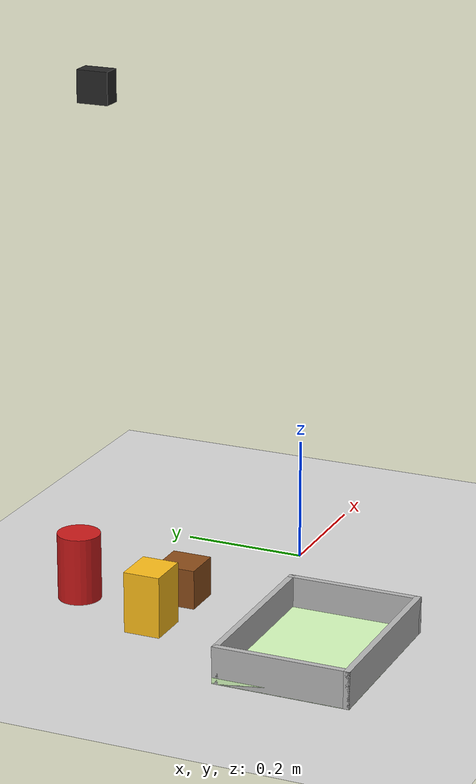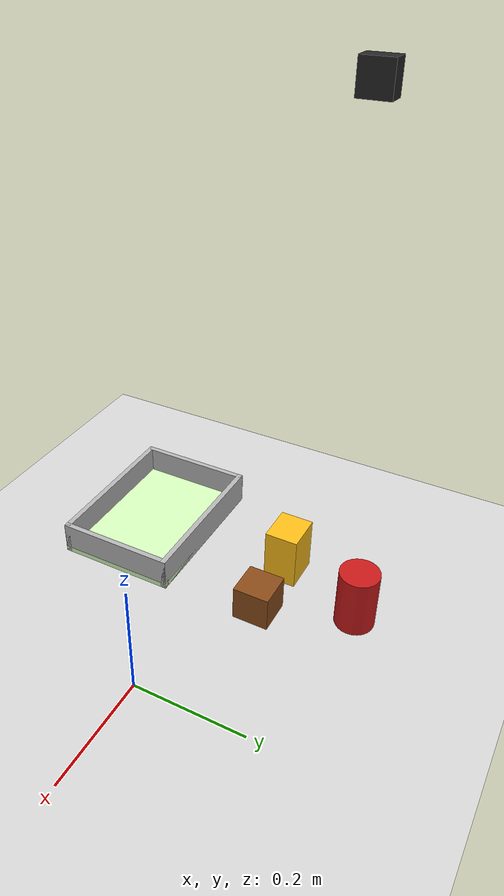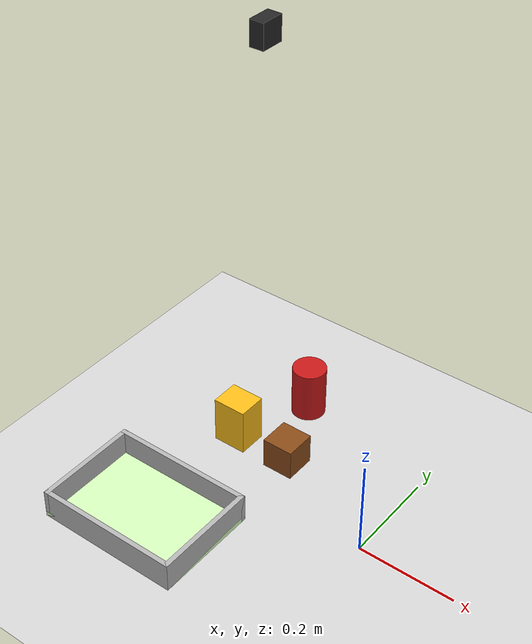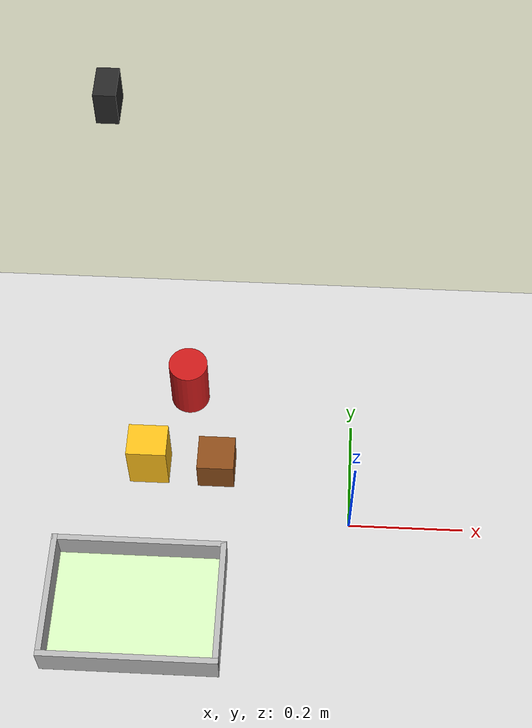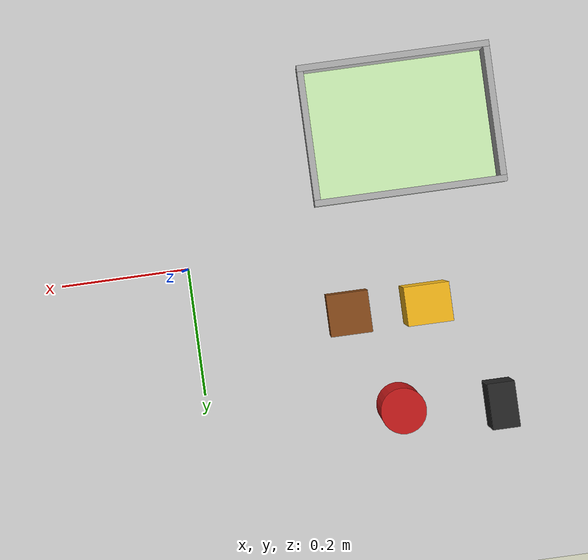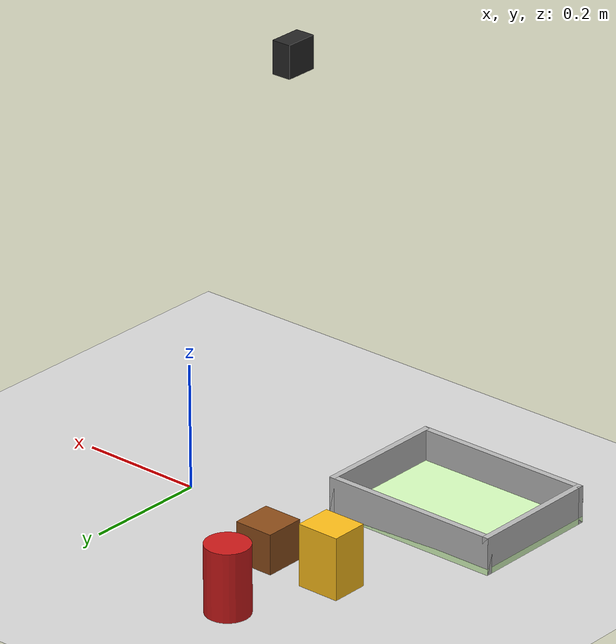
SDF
<?xml version="1.0" ?>
<sdf version="1.8">
  <world name="default">

    <!-- World plugins             -->

    <plugin
      filename="ignition-gazebo-physics-system"
      name="ignition::gazebo::systems::Physics">
    </plugin>

    <plugin
      filename="ignition-gazebo-scene-broadcaster-system"
      name="ignition::gazebo::systems::SceneBroadcaster">
    </plugin>

    <plugin
      filename="ignition-gazebo-user-commands-system"
      name="ignition::gazebo::systems::UserCommands">
    </plugin>

    <plugin
      filename="libignition-gazebo-sensors-system.so"
      name="ignition::gazebo::systems::Sensors">
      <render_engine>ogre</render_engine>
    </plugin>

    <gravity>0 0 -9.8</gravity>

    <!-- 物理参数（WSL2 弱 CPU 调优）-->
    <!-- 默认 Gazebo 用 1ms (1000 Hz) sim step + 自动追赶 wall time, WSL2 -->
    <!-- 集显 + 软件渲染下 CPU 跟不上, 会出现 sim_time 抖动/回退,         -->
    <!-- 触发下游 tf2 buffer 反复 "Detected jump back in time" + RViz     -->
    <!-- 重置, 表现为机械臂在 RViz 中一闪一闪。                          -->
    <!-- max_step_size=0.005 → 200 Hz sim step (默认 1000 Hz 的 1/5),     -->
    <!-- real_time_update_rate=200 → Gazebo 不会硬追赶 wall time,         -->
    <!-- 跑不动时 sim_time 自然变慢, 但保持单调递增, tf 就不再回跳。     -->
    <physics name="wsl_friendly" default="true" type="ode">
      <max_step_size>0.005</max_step_size>
      <real_time_factor>1.0</real_time_factor>
      <real_time_update_rate>200</real_time_update_rate>
    </physics>

    <!-- 光源                      -->

    <light name="sun" type="directional">
      <pose>0 0 10 0 0 0</pose>
      <diffuse>0.8 0.8 0.8 1</diffuse>
      <specular>0.2 0.2 0.2 1</specular>
      <direction>-0.5 0.1 -1</direction>
      <cast_shadows>true</cast_shadows>
    </light>

    <!-- 地面                      -->

    <model name="ground_plane">
      <static>true</static>
      <link name="link">
        <collision name="collision">
          <geometry>
            <plane>
              <normal>0 0 1</normal>
              <size>20 20</size>
            </plane>
          </geometry>
        </collision>
        <visual name="visual">
          <geometry>
            <plane>
              <normal>0 0 1</normal>
              <size>20 20</size>
            </plane>
          </geometry>
          <material>
            <ambient>0.85 0.85 0.85 1</ambient>
            <diffuse>0.85 0.85 0.85 1</diffuse>
          </material>
        </visual>
      </link>
    </model>

    <!-- Alicia-D 纯版（含原始夹爪）-->
    <!-- 通过 ros_gz_sim 的 create 节点从 /robot_description 动态加载 -->
    <!-- 不再在此 SDF 中静态 include，防止模型冲突与物理爆炸 -->

    <!-- 取料区（机器人前方左侧）  -->
    <!-- 无仓体，物体直接放在地面，降低真实物理抓取碰撞难度 -->

    <!-- Bin B: 放料仓（机器人前方右侧）-->

    <model name="bin_b_floor">
      <static>true</static>
      <pose>-0.36 -0.18 0.005 0 0 0</pose>
      <link name="link">
        <collision name="collision">
          <geometry><box><size>0.30 0.22 0.01</size></box></geometry>
        </collision>
        <visual name="visual">
          <geometry><box><size>0.30 0.22 0.01</size></box></geometry>
          <material>
            <ambient>0.85 1.0 0.75 1</ambient>
            <diffuse>0.85 1.0 0.75 1</diffuse>
          </material>
        </visual>
      </link>
    </model>

    <model name="bin_b_wall_front">
      <static>true</static>
      <pose>-0.36 -0.075 0.03 0 0 0</pose>
      <link name="link">
        <collision name="collision"><geometry><box><size>0.30 0.01 0.06</size></box></geometry></collision>
        <visual name="visual"><geometry><box><size>0.30 0.01 0.06</size></box></geometry></visual>
      </link>
    </model>

    <model name="bin_b_wall_back">
      <static>true</static>
      <pose>-0.36 -0.285 0.03 0 0 0</pose>
      <link name="link">
        <collision name="collision"><geometry><box><size>0.30 0.01 0.06</size></box></geometry></collision>
        <visual name="visual"><geometry><box><size>0.30 0.01 0.06</size></box></geometry></visual>
      </link>
    </model>

    <model name="bin_b_wall_left">
      <static>true</static>
      <pose>-0.215 -0.18 0.03 0 0 0</pose>
      <link name="link">
        <collision name="collision"><geometry><box><size>0.01 0.22 0.06</size></box></geometry></collision>
        <visual name="visual"><geometry><box><size>0.01 0.22 0.06</size></box></geometry></visual>
      </link>
    </model>

    <model name="bin_b_wall_right">
      <static>true</static>
      <pose>-0.505 -0.18 0.03 0 0 0</pose>
      <link name="link">
        <collision name="collision"><geometry><box><size>0.01 0.22 0.06</size></box></geometry></collision>
        <visual name="visual"><geometry><box><size>0.01 0.22 0.06</size></box></geometry></visual>
      </link>
    </model>

    <!-- 取料区内 3 个测试物体      -->
    <!-- 全部动态 (FR-1.3)          -->

    <!-- 黄色长方体 (yellow_box) -->
    <!-- 摆放间距: 与 red_cylinder y 间距 ≥0.085m, 与 brown_cube x 间距 ≥0.0375m, -->
    <!-- 同时保持距离基座 ≤0.40m, 不超出机械臂可达范围。 -->
    <model name="test_box">
      <static>false</static>
      <pose>-0.36 0.10 0.05 1.5708 0 1.5708</pose>
      <link name="link">
        <inertial>
          <mass>0.15</mass>
          <inertia>
            <ixx>0.000113</ixx><ixy>0</ixy><ixz>0</ixz>
            <iyy>0.000238</iyy><iyz>0</iyz>
            <izz>0.000238</izz>
          </inertia>
        </inertial>
        <collision name="collision">
          <geometry><box><size>0.06 0.10 0.07</size></box></geometry>
          <surface>
            <friction>
              <ode>
                <mu>8.0</mu>
                <mu2>8.0</mu2>
                <slip1>0.0</slip1>
                <slip2>0.0</slip2>
              </ode>
            </friction>
            <contact>
              <ode>
                <kp>200000</kp>
                <kd>40</kd>
                <max_vel>0.01</max_vel>
                <min_depth>0.001</min_depth>
              </ode>
            </contact>
          </surface>
        </collision>
        <visual name="visual">
          <geometry><box><size>0.06 0.10 0.07</size></box></geometry>
          <material>
            <ambient>1.0 0.75 0.1 1</ambient>
            <diffuse>1.0 0.75 0.1 1</diffuse>
          </material>
        </visual>
      </link>
    </model>

    <!-- 红色圆柱 (red_cylinder) -->
    <model name="test_can">
      <static>false</static>
      <pose>-0.30 0.255 0.055 0 0 0</pose>
      <link name="link">
        <inertial>
          <mass>0.10</mass>
          <inertia>
            <ixx>0.000110</ixx><ixy>0</ixy><ixz>0</ixz>
            <iyy>0.000110</iyy><iyz>0</iyz>
            <izz>0.0000613</izz>
          </inertia>
        </inertial>
        <collision name="collision">
          <geometry>
            <cylinder>
              <radius>0.035</radius>
              <length>0.11</length>
            </cylinder>
          </geometry>
          <surface>
            <friction>
              <ode>
                <mu>8.0</mu>
                <mu2>8.0</mu2>
                <slip1>0.0</slip1>
                <slip2>0.0</slip2>
              </ode>
            </friction>
            <contact>
              <ode>
                <kp>200000</kp>
                <kd>40</kd>
                <max_vel>0.01</max_vel>
                <min_depth>0.001</min_depth>
              </ode>
            </contact>
          </surface>
        </collision>
        <visual name="visual">
          <geometry>
            <cylinder>
              <radius>0.035</radius>
              <length>0.11</length>
            </cylinder>
          </geometry>
          <material>
            <ambient>0.8 0.1 0.1 1</ambient>
            <diffuse>0.8 0.1 0.1 1</diffuse>
          </material>
        </visual>
      </link>
    </model>

    <!-- 棕色正方体 (brown_cube) -->
    <model name="test_brown_cube">
      <static>false</static>
      <pose>-0.24 0.10 0.0325 0 0 0</pose>
      <link name="link">
        <inertial>
          <mass>0.08</mass>
          <inertia>
            <ixx>0.0000563</ixx><ixy>0</ixy><ixz>0</ixz>
            <iyy>0.0000563</iyy><iyz>0</iyz>
            <izz>0.0000563</izz>
          </inertia>
        </inertial>
        <collision name="collision">
          <geometry><box><size>0.065 0.065 0.065</size></box></geometry>
          <surface>
            <friction>
              <ode>
                <mu>8.0</mu>
                <mu2>8.0</mu2>
                <slip1>0.0</slip1>
                <slip2>0.0</slip2>
              </ode>
            </friction>
            <contact>
              <ode>
                <kp>200000</kp>
                <kd>40</kd>
                <max_vel>0.01</max_vel>
                <min_depth>0.001</min_depth>
              </ode>
            </contact>
          </surface>
        </collision>
        <visual name="visual">
          <geometry><box><size>0.065 0.065 0.065</size></box></geometry>
          <material>
            <ambient>0.55 0.30 0.10 1</ambient>
            <diffuse>0.55 0.30 0.10 1</diffuse>
          </material>
        </visual>
      </link>
    </model>

    <!-- 俯视 RGB-D 相机（静态）   -->
    <!-- 位置: 取料区正上方         -->

    <model name="overhead_rgbd_camera">
      <static>true</static>
      <!-- pose: x=取料区中心, y=取料区中心, z=0.85m 高, 俯视朝下 (pitch=90°) -->
      <pose>-0.36 0.18 0.85 0 1.5708 0</pose>

      <link name="camera_link">
        <visual name="camera_body_visual">
          <geometry>
            <box><size>0.05 0.05 0.03</size></box>
          </geometry>
          <material>
            <ambient>0.15 0.15 0.15 1</ambient>
            <diffuse>0.15 0.15 0.15 1</diffuse>
          </material>
        </visual>

        <sensor name="rgb_camera" type="camera">
          <always_on>true</always_on>
          <update_rate>5</update_rate>
          <visualize>true</visualize>
          <topic>rgbd_camera/image</topic>
          <frame_id>rgbd_camera_frame</frame_id>

          <camera>
            <horizontal_fov>1.047</horizontal_fov>
            <image>
              <width>320</width>
              <height>240</height>
              <format>R8G8B8</format>
            </image>
            <clip>
              <near>0.05</near>
              <far>2.0</far>
            </clip>
          </camera>
        </sensor>

        <sensor name="depth_camera" type="depth_camera">
          <always_on>true</always_on>
          <update_rate>5</update_rate>
          <visualize>false</visualize>
          <topic>rgbd_camera/depth_image</topic>
          <frame_id>rgbd_camera_frame</frame_id>

          <camera>
            <horizontal_fov>1.047</horizontal_fov>
            <image>
              <width>320</width>
              <height>240</height>
              <format>R_FLOAT32</format>
            </image>
            <clip>
              <near>0.05</near>
              <far>2.0</far>
            </clip>
          </camera>
        </sensor>
      </link>
    </model>

  </world>
</sdf>
